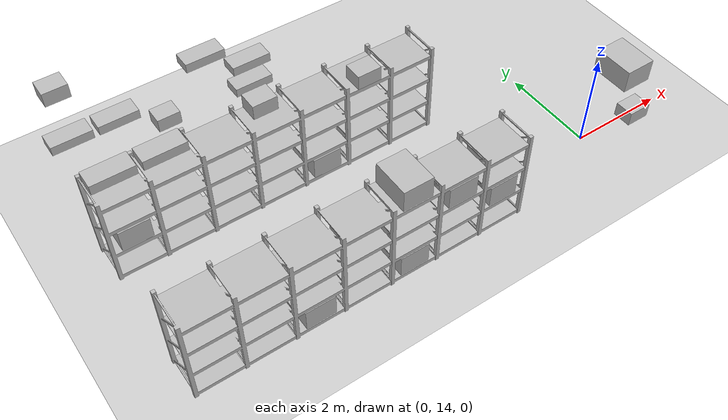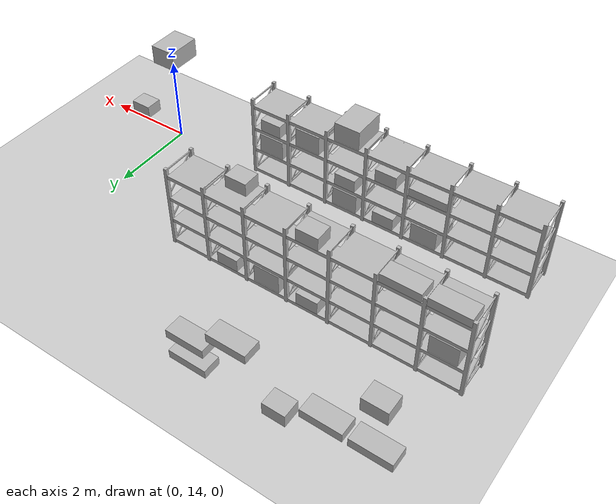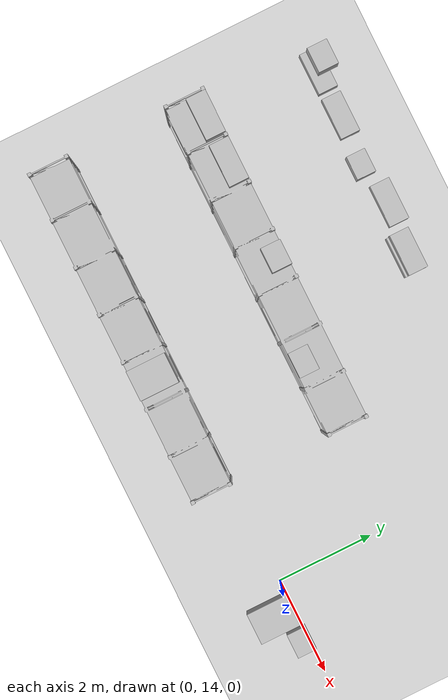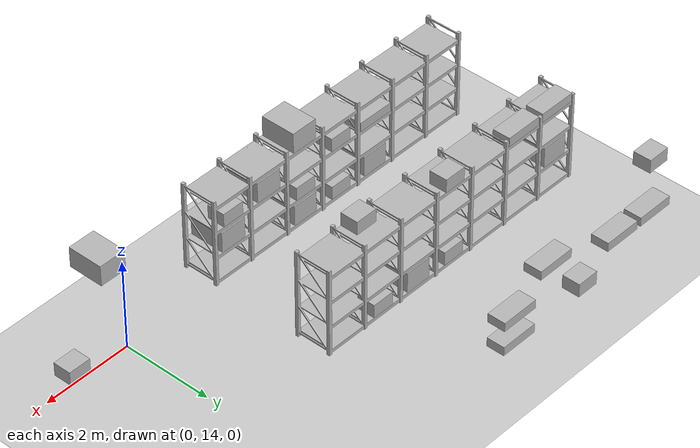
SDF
<sdf version="1.6">
 <world name="default">
  <model name="ground_plane">
   <static>1</static>
   <link name="link">
    <collision name="collision">
     <geometry><plane><normal>0 0 1</normal><size>100 100</size></plane></geometry>
     <surface><friction><ode><mu>100</mu><mu2>50</mu2></ode></friction></surface>
    </collision>
    <visual name="visual">
     <cast_shadows>0</cast_shadows>
     <geometry><plane><normal>0 0 1</normal><size>100 100</size></plane></geometry>
     <material>
      <script><uri>file://media/materials/scripts/gazebo.material</uri><name>Gazebo/Grey</name></script>
     </material>
    </visual>
   </link>
  </model>
  <model name="box_D_012">
   <pose>-8.5369 19.05 0.782 0 0 -1.5708</pose>
   <link name="link">
    <inertial>
     <mass>4.0</mass>
     <inertia><ixx>0.25417</ixx><iyy>0.06667</iyy><izz>0.29417</izz><ixy>0</ixy><ixz>0</ixz><iyz>0</iyz></inertia>
    </inertial>
    <collision name="collision">
     <geometry><box><size>0.4 0.85 0.2</size></box></geometry>
     <surface><friction><ode><mu>1.0</mu><mu2>1.0</mu2></ode></friction></surface>
    </collision>
    <visual name="visual">
     <cast_shadows>0</cast_shadows>
     <geometry><box><size>0.4 0.85 0.2</size></box></geometry>
     <material>
      <script>
       <uri>model://labeled_boxes/materials/scripts</uri>
       <uri>model://labeled_boxes/materials/textures</uri>
       <name>LabeledBox/D-012</name>
      </script>
     </material>
    </visual>
   </link>
  </model>
  <model name="box_D_013">
   <pose>-8.5369 19.05 1.992 0 0 -1.5708</pose>
   <link name="link">
    <inertial>
     <mass>2.0</mass>
     <inertia><ixx>0.05667</ixx><iyy>0.04167</iyy><izz>0.06833</izz><ixy>0</ixy><ixz>0</ixz><iyz>0</iyz></inertia>
    </inertial>
    <collision name="collision">
     <geometry><box><size>0.4 0.5 0.3</size></box></geometry>
     <surface><friction><ode><mu>1.0</mu><mu2>1.0</mu2></ode></friction></surface>
    </collision>
    <visual name="visual">
     <cast_shadows>0</cast_shadows>
     <geometry><box><size>0.4 0.5 0.3</size></box></geometry>
     <material>
      <script>
       <uri>model://labeled_boxes/materials/scripts</uri>
       <uri>model://labeled_boxes/materials/textures</uri>
       <name>LabeledBox/D-013</name>
      </script>
     </material>
    </visual>
   </link>
  </model>
  <model name="box_D_014">
   <pose>-7.583 19.05 0.782 0 0 -1.5708</pose>
   <link name="link">
    <inertial>
     <mass>4.0</mass>
     <inertia><ixx>0.25417</ixx><iyy>0.06667</iyy><izz>0.29417</izz><ixy>0</ixy><ixz>0</ixz><iyz>0</iyz></inertia>
    </inertial>
    <collision name="collision">
     <geometry><box><size>0.4 0.85 0.2</size></box></geometry>
     <surface><friction><ode><mu>1.0</mu><mu2>1.0</mu2></ode></friction></surface>
    </collision>
    <visual name="visual">
     <cast_shadows>0</cast_shadows>
     <geometry><box><size>0.4 0.85 0.2</size></box></geometry>
     <material>
      <script>
       <uri>model://labeled_boxes/materials/scripts</uri>
       <uri>model://labeled_boxes/materials/textures</uri>
       <name>LabeledBox/D-014</name>
      </script>
     </material>
    </visual>
   </link>
  </model>
  <model name="box_D_017">
   <pose>-6.6115 19.05 0.252 0 0 -1.5708</pose>
   <link name="link">
    <inertial>
     <mass>2.0</mass>
     <inertia><ixx>0.05667</ixx><iyy>0.04167</iyy><izz>0.06833</izz><ixy>0</ixy><ixz>0</ixz><iyz>0</iyz></inertia>
    </inertial>
    <collision name="collision">
     <geometry><box><size>0.4 0.5 0.3</size></box></geometry>
     <surface><friction><ode><mu>1.0</mu><mu2>1.0</mu2></ode></friction></surface>
    </collision>
    <visual name="visual">
     <cast_shadows>0</cast_shadows>
     <geometry><box><size>0.4 0.5 0.3</size></box></geometry>
     <material>
      <script>
       <uri>model://labeled_boxes/materials/scripts</uri>
       <uri>model://labeled_boxes/materials/textures</uri>
       <name>LabeledBox/D-017</name>
      </script>
     </material>
    </visual>
   </link>
  </model>
  <model name="box_D_019">
   <pose>-5.6401 19.05 1.362 0 0 -1.5708</pose>
   <link name="link">
    <inertial>
     <mass>4.0</mass>
     <inertia><ixx>0.25417</ixx><iyy>0.06667</iyy><izz>0.29417</izz><ixy>0</ixy><ixz>0</ixz><iyz>0</iyz></inertia>
    </inertial>
    <collision name="collision">
     <geometry><box><size>0.4 0.85 0.2</size></box></geometry>
     <surface><friction><ode><mu>1.0</mu><mu2>1.0</mu2></ode></friction></surface>
    </collision>
    <visual name="visual">
     <cast_shadows>0</cast_shadows>
     <geometry><box><size>0.4 0.85 0.2</size></box></geometry>
     <material>
      <script>
       <uri>model://labeled_boxes/materials/scripts</uri>
       <uri>model://labeled_boxes/materials/textures</uri>
       <name>LabeledBox/D-019</name>
      </script>
     </material>
    </visual>
   </link>
  </model>
  <model name="box_D_020">
   <pose>-4.6687 19.05 0.202 0 0 -1.5708</pose>
   <link name="link">
    <inertial>
     <mass>4.0</mass>
     <inertia><ixx>0.25417</ixx><iyy>0.06667</iyy><izz>0.29417</izz><ixy>0</ixy><ixz>0</ixz><iyz>0</iyz></inertia>
    </inertial>
    <collision name="collision">
     <geometry><box><size>0.4 0.85 0.2</size></box></geometry>
     <surface><friction><ode><mu>1.0</mu><mu2>1.0</mu2></ode></friction></surface>
    </collision>
    <visual name="visual">
     <cast_shadows>0</cast_shadows>
     <geometry><box><size>0.4 0.85 0.2</size></box></geometry>
     <material>
      <script>
       <uri>model://labeled_boxes/materials/scripts</uri>
       <uri>model://labeled_boxes/materials/textures</uri>
       <name>LabeledBox/D-020</name>
      </script>
     </material>
    </visual>
   </link>
  </model>
  <model name="box_D_021">
   <pose>-4.6687 19.05 0.782 0 0 -1.5708</pose>
   <link name="link">
    <inertial>
     <mass>4.0</mass>
     <inertia><ixx>0.25417</ixx><iyy>0.06667</iyy><izz>0.29417</izz><ixy>0</ixy><ixz>0</ixz><iyz>0</iyz></inertia>
    </inertial>
    <collision name="collision">
     <geometry><box><size>0.4 0.85 0.2</size></box></geometry>
     <surface><friction><ode><mu>1.0</mu><mu2>1.0</mu2></ode></friction></surface>
    </collision>
    <visual name="visual">
     <cast_shadows>0</cast_shadows>
     <geometry><box><size>0.4 0.85 0.2</size></box></geometry>
     <material>
      <script>
       <uri>model://labeled_boxes/materials/scripts</uri>
       <uri>model://labeled_boxes/materials/textures</uri>
       <name>LabeledBox/D-021</name>
      </script>
     </material>
    </visual>
   </link>
  </model>
  <include>
   <name>rack_D3_0</name>
   <uri>model://warehouse_rack_4lvl_7bay</uri>
   <pose>-5.6401 16.455 0 0 0 -1.5708</pose>
  </include>
  <model name="box_D_046">
   <pose>-8.5369 16.455 0.907 0 0 -1.5708</pose>
   <link name="link">
    <inertial>
     <mass>8.0</mass>
     <inertia><ixx>0.37500</ixx><iyy>0.54060</iyy><izz>0.64560</izz><ixy>0</ixy><ixz>0</ixz><iyz>0</iyz></inertia>
    </inertial>
    <collision name="collision">
     <geometry><box><size>0.78 0.6 0.45</size></box></geometry>
     <surface><friction><ode><mu>1.0</mu><mu2>1.0</mu2></ode></friction></surface>
    </collision>
    <visual name="visual">
     <cast_shadows>0</cast_shadows>
     <geometry><box><size>0.78 0.6 0.45</size></box></geometry>
     <material>
      <script>
       <uri>model://labeled_boxes/materials/scripts</uri>
       <uri>model://labeled_boxes/materials/textures</uri>
       <name>LabeledBox/D-046</name>
      </script>
     </material>
    </visual>
   </link>
  </model>
  <model name="box_D_047">
   <pose>-8.5369 16.66 1.942 0 0 -1.5708</pose>
   <link name="link">
    <inertial>
     <mass>4.0</mass>
     <inertia><ixx>0.25417</ixx><iyy>0.06667</iyy><izz>0.29417</izz><ixy>0</ixy><ixz>0</ixz><iyz>0</iyz></inertia>
    </inertial>
    <collision name="collision">
     <geometry><box><size>0.4 0.85 0.2</size></box></geometry>
     <surface><friction><ode><mu>1.0</mu><mu2>1.0</mu2></ode></friction></surface>
    </collision>
    <visual name="visual">
     <cast_shadows>0</cast_shadows>
     <geometry><box><size>0.4 0.85 0.2</size></box></geometry>
     <material>
      <script>
       <uri>model://labeled_boxes/materials/scripts</uri>
       <uri>model://labeled_boxes/materials/textures</uri>
       <name>LabeledBox/D-047</name>
      </script>
     </material>
    </visual>
   </link>
  </model>
  <model name="box_D_048">
   <pose>-7.583 16.66 1.942 0 0 -1.5708</pose>
   <link name="link">
    <inertial>
     <mass>4.0</mass>
     <inertia><ixx>0.25417</ixx><iyy>0.06667</iyy><izz>0.29417</izz><ixy>0</ixy><ixz>0</ixz><iyz>0</iyz></inertia>
    </inertial>
    <collision name="collision">
     <geometry><box><size>0.4 0.85 0.2</size></box></geometry>
     <surface><friction><ode><mu>1.0</mu><mu2>1.0</mu2></ode></friction></surface>
    </collision>
    <visual name="visual">
     <cast_shadows>0</cast_shadows>
     <geometry><box><size>0.4 0.85 0.2</size></box></geometry>
     <material>
      <script>
       <uri>model://labeled_boxes/materials/scripts</uri>
       <uri>model://labeled_boxes/materials/textures</uri>
       <name>LabeledBox/D-048</name>
      </script>
     </material>
    </visual>
   </link>
  </model>
  <model name="box_D_049">
   <pose>-5.6401 16.66 0.252 0 0 -1.5708</pose>
   <link name="link">
    <inertial>
     <mass>2.0</mass>
     <inertia><ixx>0.05667</ixx><iyy>0.04167</iyy><izz>0.06833</izz><ixy>0</ixy><ixz>0</ixz><iyz>0</iyz></inertia>
    </inertial>
    <collision name="collision">
     <geometry><box><size>0.4 0.5 0.3</size></box></geometry>
     <surface><friction><ode><mu>1.0</mu><mu2>1.0</mu2></ode></friction></surface>
    </collision>
    <visual name="visual">
     <cast_shadows>0</cast_shadows>
     <geometry><box><size>0.4 0.5 0.3</size></box></geometry>
     <material>
      <script>
       <uri>model://labeled_boxes/materials/scripts</uri>
       <uri>model://labeled_boxes/materials/textures</uri>
       <name>LabeledBox/D-049</name>
      </script>
     </material>
    </visual>
   </link>
  </model>
  <model name="box_D_050">
   <pose>-5.6401 16.66 1.992 0 0 -1.5708</pose>
   <link name="link">
    <inertial>
     <mass>2.0</mass>
     <inertia><ixx>0.05667</ixx><iyy>0.04167</iyy><izz>0.06833</izz><ixy>0</ixy><ixz>0</ixz><iyz>0</iyz></inertia>
    </inertial>
    <collision name="collision">
     <geometry><box><size>0.4 0.5 0.3</size></box></geometry>
     <surface><friction><ode><mu>1.0</mu><mu2>1.0</mu2></ode></friction></surface>
    </collision>
    <visual name="visual">
     <cast_shadows>0</cast_shadows>
     <geometry><box><size>0.4 0.5 0.3</size></box></geometry>
     <material>
      <script>
       <uri>model://labeled_boxes/materials/scripts</uri>
       <uri>model://labeled_boxes/materials/textures</uri>
       <name>LabeledBox/D-050</name>
      </script>
     </material>
    </visual>
   </link>
  </model>
  <model name="box_D_051">
   <pose>-4.6687 16.455 0.327 0 0 -1.5708</pose>
   <link name="link">
    <inertial>
     <mass>8.0</mass>
     <inertia><ixx>0.37500</ixx><iyy>0.54060</iyy><izz>0.64560</izz><ixy>0</ixy><ixz>0</ixz><iyz>0</iyz></inertia>
    </inertial>
    <collision name="collision">
     <geometry><box><size>0.78 0.6 0.45</size></box></geometry>
     <surface><friction><ode><mu>1.0</mu><mu2>1.0</mu2></ode></friction></surface>
    </collision>
    <visual name="visual">
     <cast_shadows>0</cast_shadows>
     <geometry><box><size>0.78 0.6 0.45</size></box></geometry>
     <material>
      <script>
       <uri>model://labeled_boxes/materials/scripts</uri>
       <uri>model://labeled_boxes/materials/textures</uri>
       <name>LabeledBox/D-051</name>
      </script>
     </material>
    </visual>
   </link>
  </model>
  <model name="box_D_052">
   <pose>-3.6972 16.66 0.252 0 0 -1.5708</pose>
   <link name="link">
    <inertial>
     <mass>2.0</mass>
     <inertia><ixx>0.05667</ixx><iyy>0.04167</iyy><izz>0.06833</izz><ixy>0</ixy><ixz>0</ixz><iyz>0</iyz></inertia>
    </inertial>
    <collision name="collision">
     <geometry><box><size>0.4 0.5 0.3</size></box></geometry>
     <surface><friction><ode><mu>1.0</mu><mu2>1.0</mu2></ode></friction></surface>
    </collision>
    <visual name="visual">
     <cast_shadows>0</cast_shadows>
     <geometry><box><size>0.4 0.5 0.3</size></box></geometry>
     <material>
      <script>
       <uri>model://labeled_boxes/materials/scripts</uri>
       <uri>model://labeled_boxes/materials/textures</uri>
       <name>LabeledBox/D-052</name>
      </script>
     </material>
    </visual>
   </link>
  </model>
  <model name="box_D_053">
   <pose>-3.6972 16.25 1.992 0 0 -1.5708</pose>
   <link name="link">
    <inertial>
     <mass>2.0</mass>
     <inertia><ixx>0.05667</ixx><iyy>0.04167</iyy><izz>0.06833</izz><ixy>0</ixy><ixz>0</ixz><iyz>0</iyz></inertia>
    </inertial>
    <collision name="collision">
     <geometry><box><size>0.4 0.5 0.3</size></box></geometry>
     <surface><friction><ode><mu>1.0</mu><mu2>1.0</mu2></ode></friction></surface>
    </collision>
    <visual name="visual">
     <cast_shadows>0</cast_shadows>
     <geometry><box><size>0.4 0.5 0.3</size></box></geometry>
     <material>
      <script>
       <uri>model://labeled_boxes/materials/scripts</uri>
       <uri>model://labeled_boxes/materials/textures</uri>
       <name>LabeledBox/D-053</name>
      </script>
     </material>
    </visual>
   </link>
  </model>
  <include>
   <name>rack_D4_0</name>
   <uri>model://warehouse_rack_4lvl_7bay</uri>
   <pose>-5.6401 13.655 0 0 0 -1.5708</pose>
  </include>
  <model name="box_D_070">
   <pose>-6.6115 13.655 0.327 0 0 -1.5708</pose>
   <link name="link">
    <inertial>
     <mass>8.0</mass>
     <inertia><ixx>0.37500</ixx><iyy>0.54060</iyy><izz>0.64560</izz><ixy>0</ixy><ixz>0</ixz><iyz>0</iyz></inertia>
    </inertial>
    <collision name="collision">
     <geometry><box><size>0.78 0.6 0.45</size></box></geometry>
     <surface><friction><ode><mu>1.0</mu><mu2>1.0</mu2></ode></friction></surface>
    </collision>
    <visual name="visual">
     <cast_shadows>0</cast_shadows>
     <geometry><box><size>0.78 0.6 0.45</size></box></geometry>
     <material>
      <script>
       <uri>model://labeled_boxes/materials/scripts</uri>
       <uri>model://labeled_boxes/materials/textures</uri>
       <name>LabeledBox/D-070</name>
      </script>
     </material>
    </visual>
   </link>
  </model>
  <model name="box_D_071">
   <pose>-6.6115 13.86 1.362 0 0 -1.5708</pose>
   <link name="link">
    <inertial>
     <mass>4.0</mass>
     <inertia><ixx>0.25417</ixx><iyy>0.06667</iyy><izz>0.29417</izz><ixy>0</ixy><ixz>0</ixz><iyz>0</iyz></inertia>
    </inertial>
    <collision name="collision">
     <geometry><box><size>0.4 0.85 0.2</size></box></geometry>
     <surface><friction><ode><mu>1.0</mu><mu2>1.0</mu2></ode></friction></surface>
    </collision>
    <visual name="visual">
     <cast_shadows>0</cast_shadows>
     <geometry><box><size>0.4 0.85 0.2</size></box></geometry>
     <material>
      <script>
       <uri>model://labeled_boxes/materials/scripts</uri>
       <uri>model://labeled_boxes/materials/textures</uri>
       <name>LabeledBox/D-071</name>
      </script>
     </material>
    </visual>
   </link>
  </model>
  <model name="box_D_073">
   <pose>-5.6401 13.86 0.252 0 0 -1.5708</pose>
   <link name="link">
    <inertial>
     <mass>2.0</mass>
     <inertia><ixx>0.05667</ixx><iyy>0.04167</iyy><izz>0.06833</izz><ixy>0</ixy><ixz>0</ixz><iyz>0</iyz></inertia>
    </inertial>
    <collision name="collision">
     <geometry><box><size>0.4 0.5 0.3</size></box></geometry>
     <surface><friction><ode><mu>1.0</mu><mu2>1.0</mu2></ode></friction></surface>
    </collision>
    <visual name="visual">
     <cast_shadows>0</cast_shadows>
     <geometry><box><size>0.4 0.5 0.3</size></box></geometry>
     <material>
      <script>
       <uri>model://labeled_boxes/materials/scripts</uri>
       <uri>model://labeled_boxes/materials/textures</uri>
       <name>LabeledBox/D-073</name>
      </script>
     </material>
    </visual>
   </link>
  </model>
  <model name="box_D_076">
   <pose>-5.6401 13.86 1.412 0 0 -1.5708</pose>
   <link name="link">
    <inertial>
     <mass>2.0</mass>
     <inertia><ixx>0.05667</ixx><iyy>0.04167</iyy><izz>0.06833</izz><ixy>0</ixy><ixz>0</ixz><iyz>0</iyz></inertia>
    </inertial>
    <collision name="collision">
     <geometry><box><size>0.4 0.5 0.3</size></box></geometry>
     <surface><friction><ode><mu>1.0</mu><mu2>1.0</mu2></ode></friction></surface>
    </collision>
    <visual name="visual">
     <cast_shadows>0</cast_shadows>
     <geometry><box><size>0.4 0.5 0.3</size></box></geometry>
     <material>
      <script>
       <uri>model://labeled_boxes/materials/scripts</uri>
       <uri>model://labeled_boxes/materials/textures</uri>
       <name>LabeledBox/D-076</name>
      </script>
     </material>
    </visual>
   </link>
  </model>
  <model name="box_D_077">
   <pose>-4.6687 13.655 0.327 0 0 -1.5708</pose>
   <link name="link">
    <inertial>
     <mass>8.0</mass>
     <inertia><ixx>0.37500</ixx><iyy>0.54060</iyy><izz>0.64560</izz><ixy>0</ixy><ixz>0</ixz><iyz>0</iyz></inertia>
    </inertial>
    <collision name="collision">
     <geometry><box><size>0.78 0.6 0.45</size></box></geometry>
     <surface><friction><ode><mu>1.0</mu><mu2>1.0</mu2></ode></friction></surface>
    </collision>
    <visual name="visual">
     <cast_shadows>0</cast_shadows>
     <geometry><box><size>0.78 0.6 0.45</size></box></geometry>
     <material>
      <script>
       <uri>model://labeled_boxes/materials/scripts</uri>
       <uri>model://labeled_boxes/materials/textures</uri>
       <name>LabeledBox/D-077</name>
      </script>
     </material>
    </visual>
   </link>
  </model>
  <model name="box_D_078">
   <pose>-4.6687 13.86 0.832 0 0 -1.5708</pose>
   <link name="link">
    <inertial>
     <mass>2.0</mass>
     <inertia><ixx>0.05667</ixx><iyy>0.04167</iyy><izz>0.06833</izz><ixy>0</ixy><ixz>0</ixz><iyz>0</iyz></inertia>
    </inertial>
    <collision name="collision">
     <geometry><box><size>0.4 0.5 0.3</size></box></geometry>
     <surface><friction><ode><mu>1.0</mu><mu2>1.0</mu2></ode></friction></surface>
    </collision>
    <visual name="visual">
     <cast_shadows>0</cast_shadows>
     <geometry><box><size>0.4 0.5 0.3</size></box></geometry>
     <material>
      <script>
       <uri>model://labeled_boxes/materials/scripts</uri>
       <uri>model://labeled_boxes/materials/textures</uri>
       <name>LabeledBox/D-078</name>
      </script>
     </material>
    </visual>
   </link>
  </model>
  <model name="box_D_079">
   <pose>-4.6687 13.655 2.067 0 0 -1.5708</pose>
   <link name="link">
    <inertial>
     <mass>8.0</mass>
     <inertia><ixx>0.37500</ixx><iyy>0.54060</iyy><izz>0.64560</izz><ixy>0</ixy><ixz>0</ixz><iyz>0</iyz></inertia>
    </inertial>
    <collision name="collision">
     <geometry><box><size>0.78 0.6 0.45</size></box></geometry>
     <surface><friction><ode><mu>1.0</mu><mu2>1.0</mu2></ode></friction></surface>
    </collision>
    <visual name="visual">
     <cast_shadows>0</cast_shadows>
     <geometry><box><size>0.78 0.6 0.45</size></box></geometry>
     <material>
      <script>
       <uri>model://labeled_boxes/materials/scripts</uri>
       <uri>model://labeled_boxes/materials/textures</uri>
       <name>LabeledBox/D-079</name>
      </script>
     </material>
    </visual>
   </link>
  </model>
  <model name="box_D_081">
   <pose>-3.6972 13.655 1.487 0 0 -1.5708</pose>
   <link name="link">
    <inertial>
     <mass>8.0</mass>
     <inertia><ixx>0.37500</ixx><iyy>0.54060</iyy><izz>0.64560</izz><ixy>0</ixy><ixz>0</ixz><iyz>0</iyz></inertia>
    </inertial>
    <collision name="collision">
     <geometry><box><size>0.78 0.6 0.45</size></box></geometry>
     <surface><friction><ode><mu>1.0</mu><mu2>1.0</mu2></ode></friction></surface>
    </collision>
    <visual name="visual">
     <cast_shadows>0</cast_shadows>
     <geometry><box><size>0.78 0.6 0.45</size></box></geometry>
     <material>
      <script>
       <uri>model://labeled_boxes/materials/scripts</uri>
       <uri>model://labeled_boxes/materials/textures</uri>
       <name>LabeledBox/D-081</name>
      </script>
     </material>
    </visual>
   </link>
  </model>
  <model name="box_D_082">
   <pose>-2.7433 13.655 0.907 0 0 -1.5708</pose>
   <link name="link">
    <inertial>
     <mass>8.0</mass>
     <inertia><ixx>0.37500</ixx><iyy>0.54060</iyy><izz>0.64560</izz><ixy>0</ixy><ixz>0</ixz><iyz>0</iyz></inertia>
    </inertial>
    <collision name="collision">
     <geometry><box><size>0.78 0.6 0.45</size></box></geometry>
     <surface><friction><ode><mu>1.0</mu><mu2>1.0</mu2></ode></friction></surface>
    </collision>
    <visual name="visual">
     <cast_shadows>0</cast_shadows>
     <geometry><box><size>0.78 0.6 0.45</size></box></geometry>
     <material>
      <script>
       <uri>model://labeled_boxes/materials/scripts</uri>
       <uri>model://labeled_boxes/materials/textures</uri>
       <name>LabeledBox/D-082</name>
      </script>
     </material>
    </visual>
   </link>
  </model>
  <model name="box_D_083">
   <pose>-2.7433 13.86 1.412 0 0 -1.5708</pose>
   <link name="link">
    <inertial>
     <mass>2.0</mass>
     <inertia><ixx>0.05667</ixx><iyy>0.04167</iyy><izz>0.06833</izz><ixy>0</ixy><ixz>0</ixz><iyz>0</iyz></inertia>
    </inertial>
    <collision name="collision">
     <geometry><box><size>0.4 0.5 0.3</size></box></geometry>
     <surface><friction><ode><mu>1.0</mu><mu2>1.0</mu2></ode></friction></surface>
    </collision>
    <visual name="visual">
     <cast_shadows>0</cast_shadows>
     <geometry><box><size>0.4 0.5 0.3</size></box></geometry>
     <material>
      <script>
       <uri>model://labeled_boxes/materials/scripts</uri>
       <uri>model://labeled_boxes/materials/textures</uri>
       <name>LabeledBox/D-083</name>
      </script>
     </material>
    </visual>
   </link>
  </model>
  <model name="box_D_086">
   <pose>0.2631 13.655 2.067 0 0 -1.5708</pose>
   <link name="link">
    <inertial>
     <mass>8.0</mass>
     <inertia><ixx>0.37500</ixx><iyy>0.54060</iyy><izz>0.64560</izz><ixy>0</ixy><ixz>0</ixz><iyz>0</iyz></inertia>
    </inertial>
    <collision name="collision">
     <geometry><box><size>0.78 0.6 0.45</size></box></geometry>
     <surface><friction><ode><mu>1.0</mu><mu2>1.0</mu2></ode></friction></surface>
    </collision>
    <visual name="visual">
     <cast_shadows>0</cast_shadows>
     <geometry><box><size>0.78 0.6 0.45</size></box></geometry>
     <material>
      <script>
       <uri>model://labeled_boxes/materials/scripts</uri>
       <uri>model://labeled_boxes/materials/textures</uri>
       <name>LabeledBox/D-086</name>
      </script>
     </material>
    </visual>
   </link>
  </model>
  <model name="box_D_087">
   <pose>1.217 13.86 0.252 0 0 -1.5708</pose>
   <link name="link">
    <inertial>
     <mass>2.0</mass>
     <inertia><ixx>0.05667</ixx><iyy>0.04167</iyy><izz>0.06833</izz><ixy>0</ixy><ixz>0</ixz><iyz>0</iyz></inertia>
    </inertial>
    <collision name="collision">
     <geometry><box><size>0.4 0.5 0.3</size></box></geometry>
     <surface><friction><ode><mu>1.0</mu><mu2>1.0</mu2></ode></friction></surface>
    </collision>
    <visual name="visual">
     <cast_shadows>0</cast_shadows>
     <geometry><box><size>0.4 0.5 0.3</size></box></geometry>
     <material>
      <script>
       <uri>model://labeled_boxes/materials/scripts</uri>
       <uri>model://labeled_boxes/materials/textures</uri>
       <name>LabeledBox/D-087</name>
      </script>
     </material>
    </visual>
   </link>
  </model>
 </world>
</sdf>
